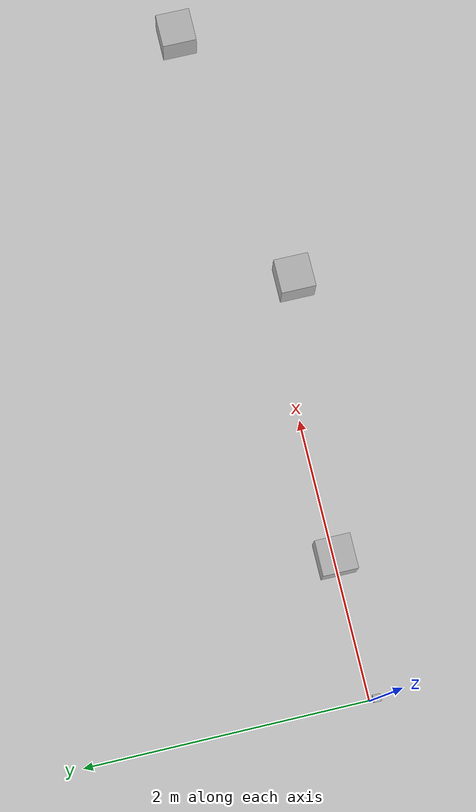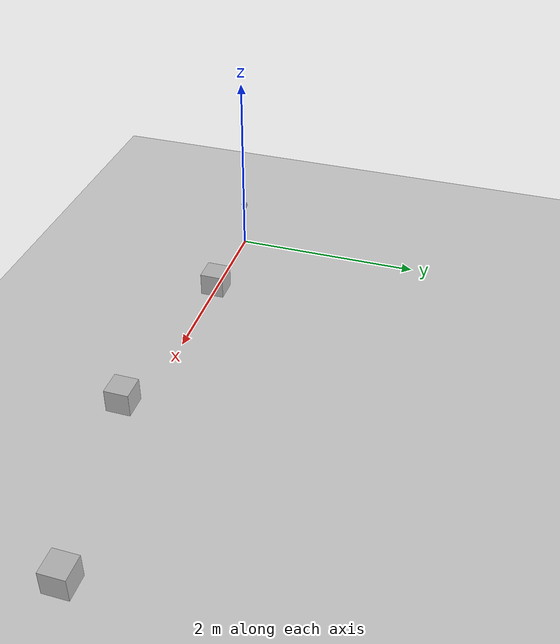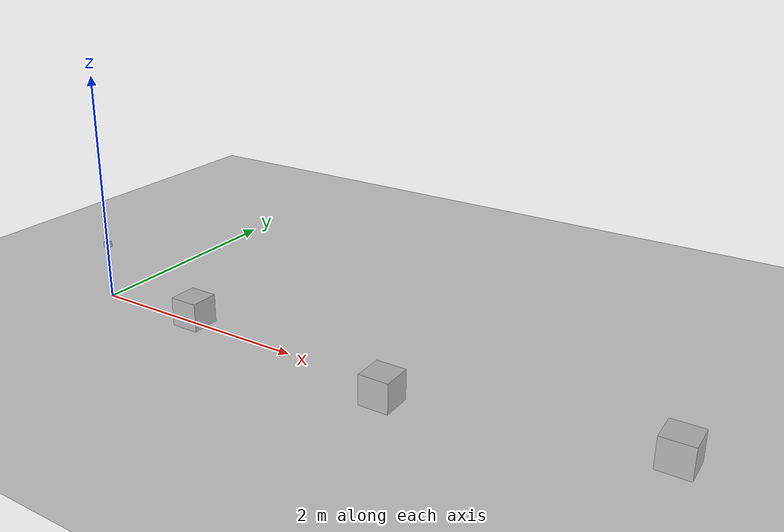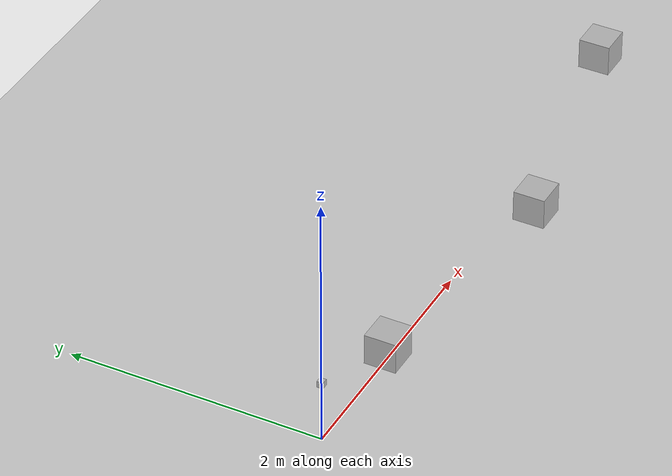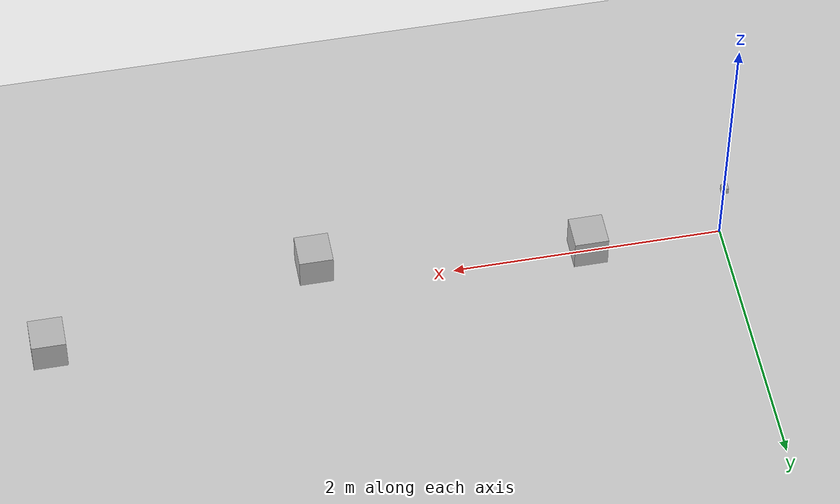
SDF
<?xml version="1.0" ?>
<sdf version="1.6">
  <world name="scenario_1_depth_test_world">

    <include>
      <uri>model://sun</uri>
    </include>

    <include>
      <uri>model://ground_plane</uri>
    </include>

    <physics type="ode">
      <max_step_size>0.001</max_step_size>
      <real_time_factor>1</real_time_factor>
      <real_time_update_rate>1000</real_time_update_rate>
    </physics>

    <!-- Модель виртуальной камеры с RGB‑сенсором mono_camera -->
    <model name="mono_camera_model">
      <pose>0 0 0.5 0 0 0</pose>
      <static>true</static>
      <link name="camera_link">
        <collision name="collision">
          <geometry>
            <box><size>0.05 0.05 0.05</size></box>
          </geometry>
        </collision>
        <visual name="visual">
          <geometry>
            <box><size>0.05 0.05 0.05</size></box>
          </geometry>
        </visual>
        <sensor name="mono_camera_sensor" type="camera">
          <camera name="mono_camera">
            <horizontal_fov>1.3962634</horizontal_fov>
            <image>
              <width>640</width>
              <height>480</height>
              <format>R8G8B8</format>
            </image>
            <clip>
              <near>0.05</near>
              <far>10.0</far>
            </clip>
            <noise>
              <type>gaussian</type>
              <mean>0.0</mean>
              <stddev>0.005</stddev>
            </noise>
          </camera>
          <plugin name="mono_camera_plugin" filename="libgazebo_ros_camera.so">
            <!-- Имя камеры должно совпадать с camera name -->
            <cameraName>mono_camera</cameraName>
            <ros>
              <!-- namespace = топик-неймспейс -->
              <namespace>/mono_camera</namespace>
              <!-- переназначение topics -->
              <argument>image_raw:=image_raw</argument>
            </ros>
            <!-- frame и optical_frame по вашему усмотрению -->
            <frame_name>camera_optical_frame</frame_name>
            <optical_frame_id>camera_optical_frame</optical_frame_id>
            <update_rate>45</update_rate>
          </plugin>
        </sensor>
      </link>
    </model>

    <!-- Куб на 1 м: без смещения, размер 0.25 -->
    <model name="test_cube_1m">
      <!-- X=1, Y=0, Z=0.125 (половина 0.25) -->
      <pose>1 0 0.125 0 0 0</pose>
      <static>true</static>
      <link name="link">
        <collision name="collision">
          <geometry>
            <box><size>0.25 0.25 0.25</size></box>
          </geometry>
        </collision>
        <visual name="visual">
          <geometry>
            <box><size>0.25 0.25 0.25</size></box>
          </geometry>
        </visual>
      </link>
    </model>

    <!-- Куб на 3м: смещён влево по Y на 0.2м, размер 0.25 -->
    <model name="test_cube_3m">
      <!-- X=3, Y=-0.2 (влево), Z=0.125 -->
      <pose>3 -0.2 0.125 0 0 0</pose>
      <static>true</static>
      <link name="link">
        <collision name="collision">
          <geometry>
            <box><size>0.25 0.25 0.25</size></box>
          </geometry>
        </collision>
        <visual name="visual">
          <geometry>
            <box><size>0.25 0.25 0.25</size></box>
          </geometry>
        </visual>
      </link>
    </model>

    <!-- Куб на 5м: смещён вправо по Y на 0.2м, размер 0.25 -->
    <model name="test_cube_5m">
      <!-- X=5, Y=+0.2 (вправо), Z=0.125 -->
      <pose>5 0.2 0.125 0 0 0</pose>
      <static>true</static>
      <link name="link">
        <collision name="collision">
          <geometry>
            <box><size>0.25 0.25 0.25</size></box>
          </geometry>
        </collision>
        <visual name="visual">
          <geometry>
            <box><size>0.25 0.25 0.25</size></box>
          </geometry>
        </visual>
      </link>
    </model>

  </world>
</sdf>
